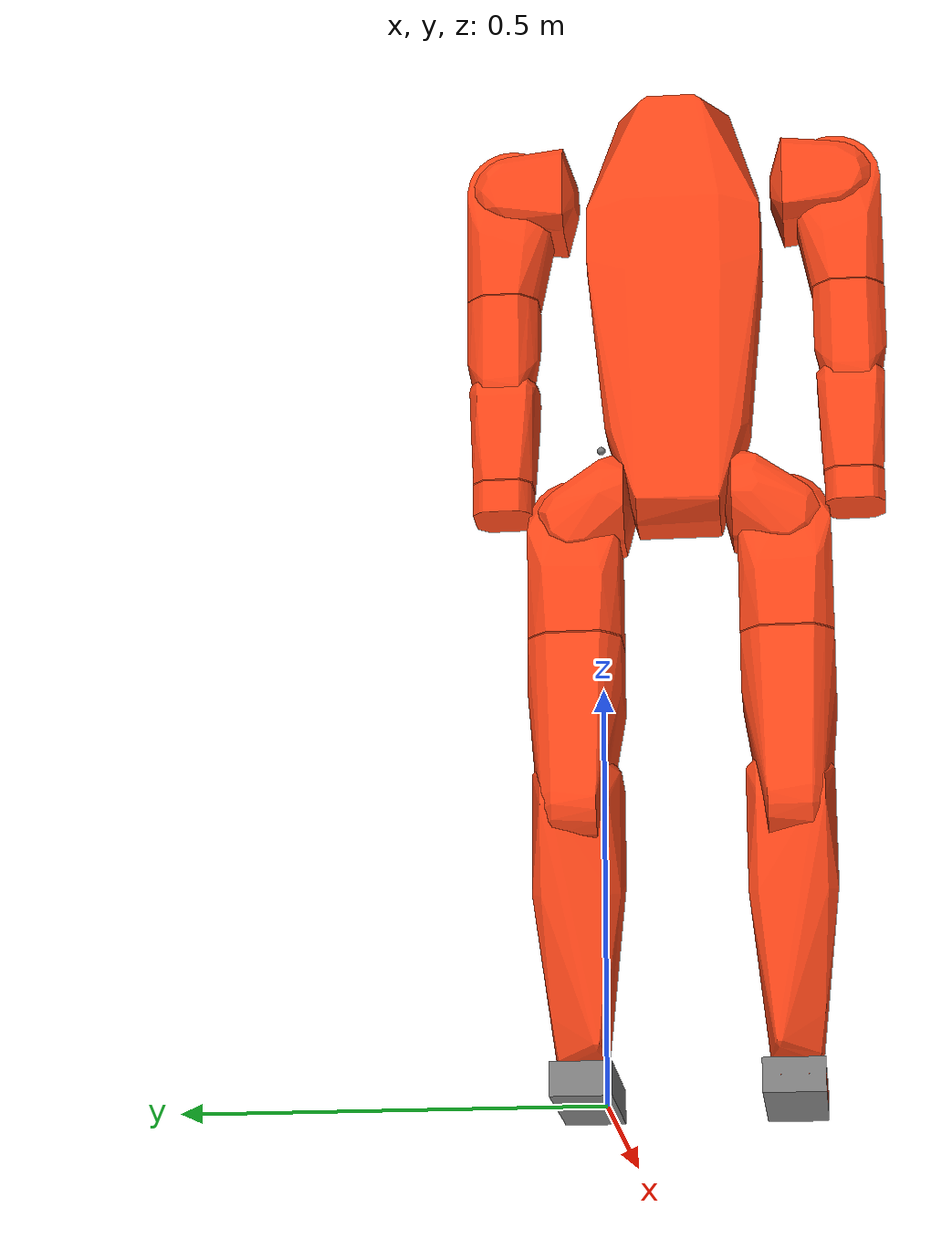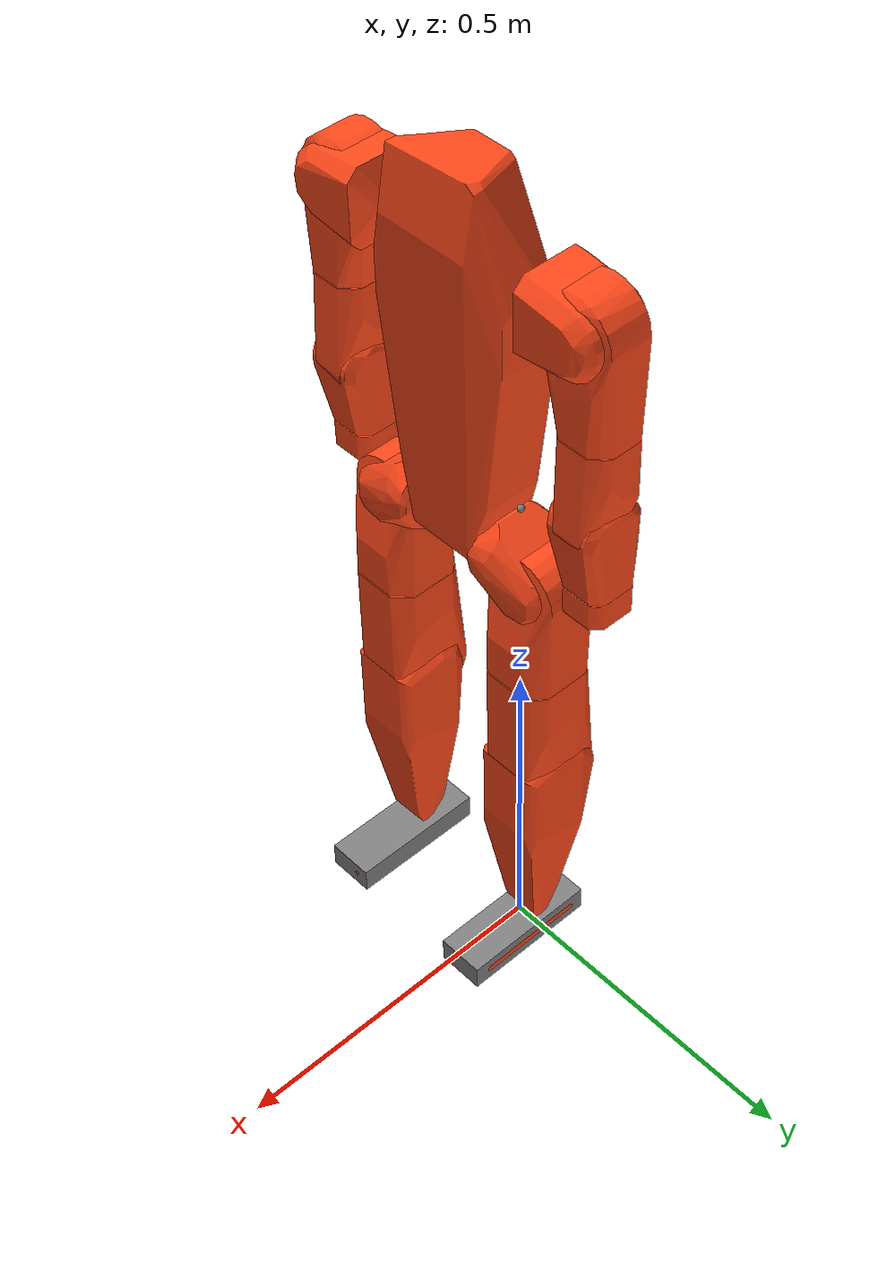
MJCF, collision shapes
<mujoco model="assy_forurdf">
  <default>
    <default class="robot">
      <default class="robstride_00">
        <joint armature="0.001" frictionloss="0.1" actuatorfrcrange="-14.0 14.0" />
        <motor ctrlrange="-14.0 14.0" />
      </default>
      <default class="robstride_04">
        <joint armature="0.04" frictionloss="0.2" actuatorfrcrange="-120.0 120.0" />
        <motor ctrlrange="-120.0 120.0" />
      </default>
      <default class="robstride_02">
        <joint armature="0.0042" frictionloss="0.1" actuatorfrcrange="-17.0 17.0" />
        <motor ctrlrange="-17.0 17.0" />
      </default>
      <default class="robstride_03">
        <joint armature="0.02" frictionloss="0.2" actuatorfrcrange="-60.0 60.0" />
        <motor ctrlrange="-60.0 60.0" />
      </default>
      <default class="visual">
        <geom material="visualgeom" contype="0" conaffinity="0" group="2" />
      </default>
      <default class="collision">
        <geom material="collision_material" condim="3" contype="0" conaffinity="1" priority="1" group="1" solref="0.02 0.8" solimp="0.9 0.95 0.001" friction="0.64 0.02 0.01" />
      </default>
    </default>
    <mesh maxhullvert="64" />
  </default>

  <compiler angle="radian" />

  <asset>
    <material name="base_material" rgba="1 0 0 1" />
    <material name="KD_B_102B_TORSO_BTM_material" rgba="0.121569 0.121569 0.121569 1" />
    <material name="default_material" rgba="0.7 0.7 0.7 1" />
    <material name="collision_material" rgba="1.0 0.28 0.1 0.9" />
    <mesh name="KD_B_102B_TORSO_BTM_collision.stl" file="meshes/KD_B_102B_TORSO_BTM_collision.stl" />
    <mesh name="KD_B_102B_TORSO_BTM.stl" file="meshes/KD_B_102B_TORSO_BTM.stl" />
    <mesh name="KD_D_102L_L_Hip_Yoke_Drive_collision.stl" file="meshes/KD_D_102L_L_Hip_Yoke_Drive_collision.stl" />
    <mesh name="KD_D_102L_L_Hip_Yoke_Drive.stl" file="meshes/KD_D_102L_L_Hip_Yoke_Drive.stl" />
    <mesh name="L_Hip_Roll_RS03_collision.stl" file="meshes/L_Hip_Roll_RS03_collision.stl" />
    <mesh name="L_Hip_Roll_RS03.stl" file="meshes/L_Hip_Roll_RS03.stl" />
    <mesh name="KD_D_301L_L_Femur_Lower_Drive_collision.stl" file="meshes/KD_D_301L_L_Femur_Lower_Drive_collision.stl" />
    <mesh name="KD_D_301L_L_Femur_Lower_Drive.stl" file="meshes/KD_D_301L_L_Femur_Lower_Drive.stl" />
    <mesh name="KD_D_401L_L_Shin_Drive_collision.stl" file="meshes/KD_D_401L_L_Shin_Drive_collision.stl" />
    <mesh name="KD_D_401L_L_Shin_Drive.stl" file="meshes/KD_D_401L_L_Shin_Drive.stl" />
    <mesh name="LFootBushing_GPF_1517_12_collision.stl" file="meshes/LFootBushing_GPF_1517_12_collision.stl" />
    <mesh name="LFootBushing_GPF_1517_12.stl" file="meshes/LFootBushing_GPF_1517_12.stl" />
    <mesh name="KC_C_101R_ShldYokeDrive_collision.stl" file="meshes/KC_C_101R_ShldYokeDrive_collision.stl" />
    <mesh name="KC_C_101R_ShldYokeDrive.stl" file="meshes/KC_C_101R_ShldYokeDrive.stl" />
    <mesh name="RS03_3_collision.stl" file="meshes/RS03_3_collision.stl" />
    <mesh name="RS03_3.stl" file="meshes/RS03_3.stl" />
    <mesh name="KC_C_202R_collision.stl" file="meshes/KC_C_202R_collision.stl" />
    <mesh name="KC_C_202R.stl" file="meshes/KC_C_202R.stl" />
    <mesh name="KC_C_401R_R_UpForearmDrive_collision.stl" file="meshes/KC_C_401R_R_UpForearmDrive_collision.stl" />
    <mesh name="KC_C_401R_R_UpForearmDrive.stl" file="meshes/KC_C_401R_R_UpForearmDrive.stl" />
    <mesh name="PRT0001_collision.stl" file="meshes/PRT0001_collision.stl" />
    <mesh name="PRT0001.stl" file="meshes/PRT0001.stl" />
    <mesh name="KD_C_101L_ShldYokeDrive_collision.stl" file="meshes/KD_C_101L_ShldYokeDrive_collision.stl" />
    <mesh name="KD_C_101L_ShldYokeDrive.stl" file="meshes/KD_C_101L_ShldYokeDrive.stl" />
    <mesh name="RS03_4_collision.stl" file="meshes/RS03_4_collision.stl" />
    <mesh name="RS03_4.stl" file="meshes/RS03_4.stl" />
    <mesh name="KD_C_301L_LowerBicepDrive_collision.stl" file="meshes/KD_C_301L_LowerBicepDrive_collision.stl" />
    <mesh name="KD_C_301L_LowerBicepDrive.stl" file="meshes/KD_C_301L_LowerBicepDrive.stl" />
    <mesh name="KC_C_401L_Up_Forearm_Drive_collision.stl" file="meshes/KC_C_401L_Up_Forearm_Drive_collision.stl" />
    <mesh name="KC_C_401L_Up_Forearm_Drive.stl" file="meshes/KC_C_401L_Up_Forearm_Drive.stl" />
    <mesh name="PRT0001_2_collision.stl" file="meshes/PRT0001_2_collision.stl" />
    <mesh name="PRT0001_2.stl" file="meshes/PRT0001_2.stl" />
    <mesh name="KD_D_102R_collision.stl" file="meshes/KD_D_102R_collision.stl" />
    <mesh name="KD_D_102R.stl" file="meshes/KD_D_102R.stl" />
    <mesh name="L_Hip_Roll_RS03_2_collision.stl" file="meshes/L_Hip_Roll_RS03_2_collision.stl" />
    <mesh name="L_Hip_Roll_RS03_2.stl" file="meshes/L_Hip_Roll_RS03_2.stl" />
    <mesh name="KD_D_301R_collision.stl" file="meshes/KD_D_301R_collision.stl" />
    <mesh name="KD_D_301R.stl" file="meshes/KD_D_301R.stl" />
    <mesh name="KD_D_401R_collision.stl" file="meshes/KD_D_401R_collision.stl" />
    <mesh name="KD_D_401R.stl" file="meshes/KD_D_401R.stl" />
    <mesh name="RFootBushing_GPF_1517_12_collision.stl" file="meshes/RFootBushing_GPF_1517_12_collision.stl" />
    <mesh name="RFootBushing_GPF_1517_12.stl" file="meshes/RFootBushing_GPF_1517_12.stl" />
    <mesh name="imu_collision.stl" file="meshes/imu_collision.stl" />
    <mesh name="imu.stl" file="meshes/imu.stl" />
  </asset>

  <worldbody>
    <body name="base" pos="0.00000000 0.00000000 0.80884103" quat="1 0 0 0" childclass="robot">
      <freejoint name="floating_base" />
      <geom name="base_visual" pos="0 -0.095 0" quat="0.7071054825112363 0.0 0.0 0.7071080798594735" material="base_material" type="sphere" size="0.01" class="visual" />
      <body name="KD_B_102B_TORSO_BTM" pos="0 -0.095 0" quat="0.7071054825112363 0.0 0.0 0.7071080798594735">
        <inertial pos="-0.000061 0.000503 0.157978" quat="1.0 0.0 0.0 0.0" mass="13.751127" diaginertia="0.5458 0.574453 0.064293" />
        <geom name="KD_B_102B_TORSO_BTM_collision" pos="0 0 0" quat="1.0 0.0 0.0 0.0" type="mesh" mesh="KD_B_102B_TORSO_BTM_collision.stl" class="collision" />
        <geom name="KD_B_102B_TORSO_BTM_visual" pos="0 0 0" quat="1.0 0.0 0.0 0.0" material="KD_B_102B_TORSO_BTM_material" type="mesh" mesh="KD_B_102B_TORSO_BTM.stl" class="visual" />
        <body name="KD_D_102L_L_Hip_Yoke_Drive" pos="0.056001 0.002025 -0.073841" quat="0.5000001633974483 -0.4999999999999733 -0.49999983660255165 0.4999999999999733">
          <joint name="dof_left_hip_pitch_04" type="hinge" ref="0.0" class="robstride_04" range="-1.047198 2.216568" axis="0 0 1" />
          <inertial pos="-0.004258 0.005667 -0.040380" quat="1.0 0.0 0.0 0.0" mass="0.550354" diaginertia="0.00093 0.001251 0.001328" />
          <geom name="KD_D_102L_L_Hip_Yoke_Drive_collision" pos="0 0 0" quat="1.0 0.0 0.0 0.0" type="mesh" mesh="KD_D_102L_L_Hip_Yoke_Drive_collision.stl" class="collision" />
          <geom name="KD_D_102L_L_Hip_Yoke_Drive_visual" pos="0 0 0" quat="1.0 0.0 0.0 0.0" material="KD_B_102B_TORSO_BTM_material" type="mesh" mesh="KD_D_102L_L_Hip_Yoke_Drive.stl" class="visual" />
          <body name="L_Hip_Roll_RS03" pos="-0.028250 0.030000 -0.071000" quat="-1.2247452309842457e-07 0.7071068967259713 1.22474483074382e-07 0.7071066656470838">
            <joint name="dof_left_hip_roll_03" type="hinge" ref="0.0" class="robstride_03" range="-0.209440 2.268928" axis="0 0 -1" />
            <inertial pos="-0.000136 -0.059376 0.026066" quat="1.0 0.0 0.0 0.0" mass="2.396969" diaginertia="0.01035 0.003224 0.010755" />
            <geom name="L_Hip_Roll_RS03_collision" pos="0 0 0" quat="1.0 0.0 0.0 0.0" type="mesh" mesh="L_Hip_Roll_RS03_collision.stl" class="collision" />
            <geom name="L_Hip_Roll_RS03_visual" pos="0 0 0" quat="1.0 0.0 0.0 0.0" material="KD_B_102B_TORSO_BTM_material" type="mesh" mesh="L_Hip_Roll_RS03.stl" class="visual" />
            <body name="KD_D_301L_L_Femur_Lower_Drive" pos="0 -0.143000 0.025250" quat="-1.2247452309842457e-07 -1.22474483074382e-07 -0.7071066656470838 -0.7071068967259713">
              <joint name="dof_left_hip_yaw_03" type="hinge" ref="0.0" class="robstride_03" range="-1.570796 1.570796" axis="0 0 1" />
              <inertial pos="0.001576 0.013392 -0.172799" quat="1.0 0.0 0.0 0.0" mass="2.349254" diaginertia="0.015361 0.013924 0.004011" />
              <geom name="KD_D_301L_L_Femur_Lower_Drive_collision" pos="0 0 0" quat="1.0 0.0 0.0 0.0" type="mesh" mesh="KD_D_301L_L_Femur_Lower_Drive_collision.stl" class="collision" />
              <geom name="KD_D_301L_L_Femur_Lower_Drive_visual" pos="0 0 0" quat="1.0 0.0 0.0 0.0" material="KD_B_102B_TORSO_BTM_material" type="mesh" mesh="KD_D_301L_L_Femur_Lower_Drive.stl" class="visual" />
              <body name="KD_D_401L_L_Shin_Drive" pos="-0.021000 0.021000 -0.212000" quat="0.5000001633974483 0.4999999999999733 0.49999983660255165 0.4999999999999733">
                <joint name="dof_left_knee_04" type="hinge" ref="0.0" class="robstride_04" range="0 2.705260" axis="0 0 1" />
                <inertial pos="-0.024116 -0.104308 0.018559" quat="1.0 0.0 0.0 0.0" mass="1.684707" diaginertia="0.014785 0.002991 0.014664" />
                <geom name="KD_D_401L_L_Shin_Drive_collision" pos="0 0 0" quat="1.0 0.0 0.0 0.0" type="mesh" mesh="KD_D_401L_L_Shin_Drive_collision.stl" class="collision" />
                <geom name="KD_D_401L_L_Shin_Drive_visual" pos="0 0 0" quat="1.0 0.0 0.0 0.0" material="KD_B_102B_TORSO_BTM_material" type="mesh" mesh="KD_D_401L_L_Shin_Drive.stl" class="visual" />
                <body name="LFootBushing_GPF_1517_12" pos="-0.030000 -0.290000 0.000950" quat="-1.7320510330969933e-07 0.999999999999985 0.0 -0.0">
                  <joint name="dof_left_ankle_02" type="hinge" ref="0.0" class="robstride_02" range="-1.134464 0.261799" axis="0 0 -1" />
                  <inertial pos="-0.016549 0.031142 -0.012943" quat="1.0 0.0 0.0 0.0" mass="0.608966" diaginertia="0.000377 0.00194 0.001893" />
                  <geom name="LFootBushing_GPF_1517_12_visual" pos="0 0 0" quat="1.0 0.0 0.0 0.0" material="KD_B_102B_TORSO_BTM_material" type="mesh" mesh="LFootBushing_GPF_1517_12.stl" class="visual" />
                  <geom name="LFootBushing_GPF_1517_12_collision_capsule_0" type="capsule" quat="1.000000 0.000000 0.000000 0.000000" fromto="-0.107970 0.038000 -0.030814 0.056360 0.038000 -0.030814" size="0.020000 0.104686" material="collision_material" class="collision" />
                  <geom name="LFootBushing_GPF_1517_12_visual_capsule_0" type="capsule" quat="1.000000 0.000000 0.000000 0.000000" fromto="-0.107970 0.038000 -0.030814 0.056360 0.038000 -0.030814" size="0.020000 0.104686" material="KD_B_102B_TORSO_BTM_material" class="visual" />
                  <geom name="LFootBushing_GPF_1517_12_collision_capsule_1" type="capsule" quat="1.000000 0.000000 0.000000 0.000000" fromto="-0.113013 0.038000 0.000954 0.056360 0.038000 0.000954" size="0.020000 0.104686" material="collision_material" class="collision" />
                  <geom name="LFootBushing_GPF_1517_12_visual_capsule_1" type="capsule" quat="1.000000 0.000000 0.000000 0.000000" fromto="-0.113013 0.038000 0.000954 0.056360 0.038000 0.000954" size="0.020000 0.104686" material="KD_B_102B_TORSO_BTM_material" class="visual" />
                  <site name="left_foot" size="0.105 0.02 0.036" pos="-0.0283 0.038 -0.014" type="box" />
                </body>
              </body>
            </body>
          </body>
        </body>
        <body name="KC_C_101R_ShldYokeDrive" pos="-0.120999 0.002025 0.336659" quat="0.7071068967259818 0.0 -0.7071066656470943 0.0">
          <joint name="dof_right_shoulder_pitch_03" type="hinge" ref="0.0" class="robstride_03" range="-3.490658 1.047198" axis="0 0 -1" />
          <inertial pos="0.003158 -0.007737 0.047375" quat="1.0 0.0 0.0 0.0" mass="0.569870" diaginertia="0.001409 0.001159 0.001309" />
          <geom name="KC_C_101R_ShldYokeDrive_collision" pos="0 0 0" quat="1.0 0.0 0.0 0.0" type="mesh" mesh="KC_C_101R_ShldYokeDrive_collision.stl" class="collision" />
          <geom name="KC_C_101R_ShldYokeDrive_visual" pos="0 0 0" quat="1.0 0.0 0.0 0.0" material="KD_B_102B_TORSO_BTM_material" type="mesh" mesh="KC_C_101R_ShldYokeDrive.stl" class="visual" />
          <body name="RS03_3" pos="0 -0.024250 0.080000" quat="0.5000001633974483 0.4999999999999733 0.4999999999999733 -0.49999983660255165">
            <joint name="dof_right_shoulder_roll_03" type="hinge" ref="0.0" class="robstride_03" range="-1.658063 0.436332" axis="0 0 1" />
            <inertial pos="-0.004909 -0.041175 -0.029409" quat="1.0 0.0 0.0 0.0" mass="1.789232" diaginertia="0.007176 0.001972 0.007602" />
            <geom name="RS03_3_collision" pos="0 0 0" quat="1.0 0.0 0.0 0.0" type="mesh" mesh="RS03_3_collision.stl" class="collision" />
            <geom name="RS03_3_visual" pos="0 0 0" quat="1.0 0.0 0.0 0.0" material="KD_B_102B_TORSO_BTM_material" type="mesh" mesh="RS03_3.stl" class="visual" />
            <body name="KC_C_202R" pos="-0.013000 -0.142500 -0.031670" quat="0.7071068967259818 -0.7071066656470943 0.0 0.0">
              <joint name="dof_right_shoulder_yaw_02" type="hinge" ref="0.0" class="robstride_02" range="-1.671886 1.671886" axis="0 0 1" />
              <inertial pos="0.003135 -0.003955 -0.099599" quat="1.0 0.0 0.0 0.0" mass="0.753224" diaginertia="0.002457 0.002305 0.000727" />
              <geom name="KC_C_202R_collision" pos="0 0 0" quat="1.0 0.0 0.0 0.0" type="mesh" mesh="KC_C_202R_collision.stl" class="collision" />
              <geom name="KC_C_202R_visual" pos="0 0 0" quat="1.0 0.0 0.0 0.0" material="KD_B_102B_TORSO_BTM_material" type="mesh" mesh="KC_C_202R.stl" class="visual" />
              <body name="KC_C_401R_R_UpForearmDrive" pos="0.019000 -0.010000 -0.137000" quat="0.5000001633974483 -0.4999999999999733 -0.49999983660255165 0.4999999999999733">
                <joint name="dof_right_elbow_02" type="hinge" ref="0.0" class="robstride_02" range="0 2.478368" axis="0 0 1" />
                <inertial pos="0.015853 0.061198 0.015613" quat="1.0 0.0 0.0 0.0" mass="0.641859" diaginertia="0.001302 0.000701 0.001278" />
                <geom name="KC_C_401R_R_UpForearmDrive_collision" pos="0 0 0" quat="1.0 0.0 0.0 0.0" type="mesh" mesh="KC_C_401R_R_UpForearmDrive_collision.stl" class="collision" />
                <geom name="KC_C_401R_R_UpForearmDrive_visual" pos="0 0 0" quat="1.0 0.0 0.0 0.0" material="KD_B_102B_TORSO_BTM_material" type="mesh" mesh="KC_C_401R_R_UpForearmDrive.stl" class="visual" />
                <body name="PRT0001" pos="0.017350 0.103000 0.018000" quat="0.5000001633974483 -0.4999999999999733 0.4999999999999733 0.49999983660255165">
                  <joint name="dof_right_wrist_00" type="hinge" ref="0.0" class="robstride_00" range="-1.378810 1.378810" axis="0 0 -1" />
                  <inertial pos="0.000339 0.000063 0.027268" quat="1.0 0.0 0.0 0.0" mass="0.469028" diaginertia="0.000279 0.00027 0.000412" />
                  <geom name="PRT0001_collision" pos="0 0 0" quat="1.0 0.0 0.0 0.0" type="mesh" mesh="PRT0001_collision.stl" class="collision" />
                  <geom name="PRT0001_visual" pos="0 0 0" quat="1.0 0.0 0.0 0.0" material="KD_B_102B_TORSO_BTM_material" type="mesh" mesh="PRT0001.stl" class="visual" />
                </body>
              </body>
            </body>
          </body>
        </body>
        <body name="KD_C_101L_ShldYokeDrive" pos="0.121001 0.002025 0.336659" quat="0.7071068967259818 0.0 0.7071066656470943 0.0">
          <joint name="dof_left_shoulder_pitch_03" type="hinge" ref="0.0" class="robstride_03" range="-1.047198 3.490658" axis="0 0 -1" />
          <inertial pos="-0.003158 -0.007737 0.047374" quat="1.0 0.0 0.0 0.0" mass="0.569863" diaginertia="0.001409 0.001159 0.001309" />
          <geom name="KD_C_101L_ShldYokeDrive_collision" pos="0 0 0" quat="1.0 0.0 0.0 0.0" type="mesh" mesh="KD_C_101L_ShldYokeDrive_collision.stl" class="collision" />
          <geom name="KD_C_101L_ShldYokeDrive_visual" pos="0 0 0" quat="1.0 0.0 0.0 0.0" material="KD_B_102B_TORSO_BTM_material" type="mesh" mesh="KD_C_101L_ShldYokeDrive.stl" class="visual" />
          <body name="RS03_4" pos="0 -0.024250 0.080000" quat="0.5000001633974483 0.4999999999999733 -0.4999999999999733 0.49999983660255165">
            <joint name="dof_left_shoulder_roll_03" type="hinge" ref="0.0" class="robstride_03" range="-0.436332 1.658063" axis="0 0 1" />
            <inertial pos="0.004876 -0.041173 -0.029352" quat="1.0 0.0 0.0 0.0" mass="1.789190" diaginertia="0.007175 0.001972 0.007602" />
            <geom name="RS03_4_collision" pos="0 0 0" quat="1.0 0.0 0.0 0.0" type="mesh" mesh="RS03_4_collision.stl" class="collision" />
            <geom name="RS03_4_visual" pos="0 0 0" quat="1.0 0.0 0.0 0.0" material="KD_B_102B_TORSO_BTM_material" type="mesh" mesh="RS03_4.stl" class="visual" />
            <body name="KD_C_301L_LowerBicepDrive" pos="0.013000 -0.142500 -0.030750" quat="0.7071068967259818 -0.7071066656470943 0.0 0.0">
              <joint name="dof_left_shoulder_yaw_02" type="hinge" ref="0.0" class="robstride_02" range="-1.671886 1.671886" axis="0 0 1" />
              <inertial pos="0.000333 -0.002948 -0.095705" quat="1.0 0.0 0.0 0.0" mass="0.866827" diaginertia="0.002953 0.002777 0.000923" />
              <geom name="KD_C_301L_LowerBicepDrive_collision" pos="0 0 0" quat="1.0 0.0 0.0 0.0" type="mesh" mesh="KD_C_301L_LowerBicepDrive_collision.stl" class="collision" />
              <geom name="KD_C_301L_LowerBicepDrive_visual" pos="0 0 0" quat="1.0 0.0 0.0 0.0" material="KD_B_102B_TORSO_BTM_material" type="mesh" mesh="KD_C_301L_LowerBicepDrive.stl" class="visual" />
              <body name="KC_C_401L_Up_Forearm_Drive" pos="-0.019000 -0.010000 -0.137000" quat="0.5000001633974483 0.4999999999999733 0.49999983660255165 0.4999999999999733">
                <joint name="dof_left_elbow_02" type="hinge" ref="0.0" class="robstride_02" range="-2.478368 0" axis="0 0 1" />
                <inertial pos="0.015853 -0.061197 0.015921" quat="1.0 0.0 0.0 0.0" mass="0.641873" diaginertia="0.001303 0.000701 0.001278" />
                <geom name="KC_C_401L_Up_Forearm_Drive_collision" pos="0 0 0" quat="1.0 0.0 0.0 0.0" type="mesh" mesh="KC_C_401L_Up_Forearm_Drive_collision.stl" class="collision" />
                <geom name="KC_C_401L_Up_Forearm_Drive_visual" pos="0 0 0" quat="1.0 0.0 0.0 0.0" material="KD_B_102B_TORSO_BTM_material" type="mesh" mesh="KC_C_401L_Up_Forearm_Drive.stl" class="visual" />
                <body name="PRT0001_2" pos="0.017350 -0.103000 0.018000" quat="0.5000001633974483 0.4999999999999733 -0.4999999999999733 0.49999983660255165">
                  <joint name="dof_left_wrist_00" type="hinge" ref="0.0" class="robstride_00" range="-1.378810 1.378810" axis="0 0 -1" />
                  <inertial pos="-0.000339 -0.000063 0.027268" quat="1.0 0.0 0.0 0.0" mass="0.469028" diaginertia="0.000279 0.00027 0.000412" />
                  <geom name="PRT0001_2_collision" pos="0 0 0" quat="1.0 0.0 0.0 0.0" type="mesh" mesh="PRT0001_2_collision.stl" class="collision" />
                  <geom name="PRT0001_2_visual" pos="0 0 0" quat="1.0 0.0 0.0 0.0" material="KD_B_102B_TORSO_BTM_material" type="mesh" mesh="PRT0001_2.stl" class="visual" />
                </body>
              </body>
            </body>
          </body>
        </body>
        <body name="KD_D_102R" pos="-0.055999 0.002025 -0.073841" quat="0.5000001633974483 0.4999999999999733 0.49999983660255165 0.4999999999999733">
          <joint name="dof_right_hip_pitch_04" type="hinge" ref="0.0" class="robstride_04" range="-2.216568 1.047198" axis="0 0 1" />
          <inertial pos="-0.004258 -0.005667 -0.040379" quat="1.0 0.0 0.0 0.0" mass="0.550361" diaginertia="0.00093 0.001251 0.001328" />
          <geom name="KD_D_102R_collision" pos="0 0 0" quat="1.0 0.0 0.0 0.0" type="mesh" mesh="KD_D_102R_collision.stl" class="collision" />
          <geom name="KD_D_102R_visual" pos="0 0 0" quat="1.0 0.0 0.0 0.0" material="KD_B_102B_TORSO_BTM_material" type="mesh" mesh="KD_D_102R.stl" class="visual" />
          <body name="L_Hip_Roll_RS03_2" pos="-0.028250 -0.030000 -0.071000" quat="0.7071068967259818 0.0 -0.7071066656470943 0.0">
            <joint name="dof_right_hip_roll_03" type="hinge" ref="0.0" class="robstride_03" range="-2.268928 0.209440" axis="0 0 1" />
            <inertial pos="-0.000137 -0.059376 -0.026067" quat="1.0 0.0 0.0 0.0" mass="2.396917" diaginertia="0.01035 0.003224 0.010755" />
            <geom name="L_Hip_Roll_RS03_2_collision" pos="0 0 0" quat="1.0 0.0 0.0 0.0" type="mesh" mesh="L_Hip_Roll_RS03_2_collision.stl" class="collision" />
            <geom name="L_Hip_Roll_RS03_2_visual" pos="0 0 0" quat="1.0 0.0 0.0 0.0" material="KD_B_102B_TORSO_BTM_material" type="mesh" mesh="L_Hip_Roll_RS03_2.stl" class="visual" />
            <body name="KD_D_301R" pos="0 -0.143000 -0.025250" quat="0.7071068967259818 -0.7071066656470943 0.0 0.0">
              <joint name="dof_right_hip_yaw_03" type="hinge" ref="0.0" class="robstride_03" range="-1.570796 1.570796" axis="0 0 1" />
              <inertial pos="-0.001577 0.013392 -0.172799" quat="1.0 0.0 0.0 0.0" mass="2.349261" diaginertia="0.015362 0.013924 0.004011" />
              <geom name="KD_D_301R_collision" pos="0 0 0" quat="1.0 0.0 0.0 0.0" type="mesh" mesh="KD_D_301R_collision.stl" class="collision" />
              <geom name="KD_D_301R_visual" pos="0 0 0" quat="1.0 0.0 0.0 0.0" material="KD_B_102B_TORSO_BTM_material" type="mesh" mesh="KD_D_301R.stl" class="visual" />
              <body name="KD_D_401R" pos="0.021000 0.021000 -0.212000" quat="0.5000001633974483 0.4999999999999733 0.49999983660255165 0.4999999999999733">
                <joint name="dof_right_knee_04" type="hinge" ref="0.0" class="robstride_04" range="-2.705260 0" axis="0 0 -1" />
                <inertial pos="-0.024117 -0.104310 -0.018558" quat="1.0 0.0 0.0 0.0" mass="1.684717" diaginertia="0.014785 0.002991 0.014664" />
                <geom name="KD_D_401R_collision" pos="0 0 0" quat="1.0 0.0 0.0 0.0" type="mesh" mesh="KD_D_401R_collision.stl" class="collision" />
                <geom name="KD_D_401R_visual" pos="0 0 0" quat="1.0 0.0 0.0 0.0" material="KD_B_102B_TORSO_BTM_material" type="mesh" mesh="KD_D_401R.stl" class="visual" />
                <body name="RFootBushing_GPF_1517_12" pos="-0.030000 -0.290000 -0.000950" quat="1.0 0.0 0.0 0.0">
                  <joint name="dof_right_ankle_02" type="hinge" ref="0.0" class="robstride_02" range="-0.261799 1.134464" axis="0 0 -1" />
                  <inertial pos="-0.016546 -0.031136 -0.012942" quat="1.0 0.0 0.0 0.0" mass="0.608742" diaginertia="0.000377 0.001939 0.001892" />
                  <geom name="RFootBushing_GPF_1517_12_visual" pos="0 0 0" quat="1.0 0.0 0.0 0.0" material="KD_B_102B_TORSO_BTM_material" type="mesh" mesh="RFootBushing_GPF_1517_12.stl" class="visual" />
                  <geom name="RFootBushing_GPF_1517_12_collision_capsule_0" type="capsule" quat="1.000000 0.000000 0.000000 0.000000" fromto="-0.102246 -0.038000 -0.030886 0.056821 -0.038000 -0.030886" size="0.020000 0.105464" material="collision_material" class="collision" />
                  <geom name="RFootBushing_GPF_1517_12_visual_capsule_0" type="capsule" quat="1.000000 0.000000 0.000000 0.000000" fromto="-0.102246 -0.038000 -0.030886 0.056821 -0.038000 -0.030886" size="0.020000 0.105464" material="KD_B_102B_TORSO_BTM_material" class="visual" />
                  <geom name="RFootBushing_GPF_1517_12_collision_capsule_1" type="capsule" quat="1.000000 0.000000 0.000000 0.000000" fromto="-0.114107 -0.038000 0.000954 0.056821 -0.038000 0.000954" size="0.020000 0.105464" material="collision_material" class="collision" />
                  <geom name="RFootBushing_GPF_1517_12_visual_capsule_1" type="capsule" quat="1.000000 0.000000 0.000000 0.000000" fromto="-0.114107 -0.038000 0.000954 0.056821 -0.038000 0.000954" size="0.020000 0.105464" material="KD_B_102B_TORSO_BTM_material" class="visual" />
                  <site name="right_foot" size="0.105 0.02 0.036" pos="-0.0283 -0.038 -0.014" type="box" />
                </body>
              </body>
            </body>
          </body>
        </body>
        <body name="imu" pos="-0.013761 -0.022944 0.394547" quat="0.9999845682495649 0.005555471422940753 0.0 0.0">
          <inertial pos="0.014706 0.012343 0.002999" quat="1.0 0.0 0.0 0.0" mass="0.005700" diaginertia="1e-06 1e-06 2e-06" />
          <geom name="imu_collision" pos="0 0 0" quat="1.0 0.0 0.0 0.0" type="mesh" mesh="imu_collision.stl" class="collision" />
          <geom name="imu_visual" pos="0 0 0" quat="1.0 0.0 0.0 0.0" material="KD_B_102B_TORSO_BTM_material" type="mesh" mesh="imu.stl" class="visual" />
          <site name="imu_site" quat="1.0 0.0 0.0 0.0" pos="0.0 0.0 0.0" />
        </body>
      </body>
      <site name="base_site" pos="0 0 0" quat="1 0 0 0" />
      <camera name="front_camera" mode="track" fovy="90.0" quat="4.329780281177467e-17 4.329780281177466e-17 0.7071067811865475 0.7071067811865476" pos="0.0 2.0 0.5" />
      <camera name="side_camera" mode="track" fovy="90.0" quat="-0.5 -0.4999999999999999 0.5 0.5000000000000001" pos="-2.0 0.0 0.5" />
    </body>
  </worldbody>

  <actuator>
    <motor name="dof_left_hip_pitch_04_ctrl" joint="dof_left_hip_pitch_04" class="robstride_04" />
    <motor name="dof_left_hip_roll_03_ctrl" joint="dof_left_hip_roll_03" class="robstride_03" />
    <motor name="dof_left_hip_yaw_03_ctrl" joint="dof_left_hip_yaw_03" class="robstride_03" />
    <motor name="dof_left_knee_04_ctrl" joint="dof_left_knee_04" class="robstride_04" />
    <motor name="dof_left_ankle_02_ctrl" joint="dof_left_ankle_02" class="robstride_02" />
    <motor name="dof_right_shoulder_pitch_03_ctrl" joint="dof_right_shoulder_pitch_03" class="robstride_03" />
    <motor name="dof_right_shoulder_roll_03_ctrl" joint="dof_right_shoulder_roll_03" class="robstride_03" />
    <motor name="dof_right_shoulder_yaw_02_ctrl" joint="dof_right_shoulder_yaw_02" class="robstride_02" />
    <motor name="dof_right_elbow_02_ctrl" joint="dof_right_elbow_02" class="robstride_02" />
    <motor name="dof_right_wrist_00_ctrl" joint="dof_right_wrist_00" class="robstride_00" />
    <motor name="dof_left_shoulder_pitch_03_ctrl" joint="dof_left_shoulder_pitch_03" class="robstride_03" />
    <motor name="dof_left_shoulder_roll_03_ctrl" joint="dof_left_shoulder_roll_03" class="robstride_03" />
    <motor name="dof_left_shoulder_yaw_02_ctrl" joint="dof_left_shoulder_yaw_02" class="robstride_02" />
    <motor name="dof_left_elbow_02_ctrl" joint="dof_left_elbow_02" class="robstride_02" />
    <motor name="dof_left_wrist_00_ctrl" joint="dof_left_wrist_00" class="robstride_00" />
    <motor name="dof_right_hip_pitch_04_ctrl" joint="dof_right_hip_pitch_04" class="robstride_04" />
    <motor name="dof_right_hip_roll_03_ctrl" joint="dof_right_hip_roll_03" class="robstride_03" />
    <motor name="dof_right_hip_yaw_03_ctrl" joint="dof_right_hip_yaw_03" class="robstride_03" />
    <motor name="dof_right_knee_04_ctrl" joint="dof_right_knee_04" class="robstride_04" />
    <motor name="dof_right_ankle_02_ctrl" joint="dof_right_ankle_02" class="robstride_02" />
  </actuator>

  <contact>
    <exclude body1="KD_B_102B_TORSO_BTM" body2="KD_D_102L_L_Hip_Yoke_Drive" />
    <exclude body1="KD_B_102B_TORSO_BTM" body2="KC_C_101R_ShldYokeDrive" />
    <exclude body1="KD_B_102B_TORSO_BTM" body2="KD_C_101L_ShldYokeDrive" />
    <exclude body1="KD_D_102L_L_Hip_Yoke_Drive" body2="L_Hip_Roll_RS03" />
    <exclude body1="KD_B_102B_TORSO_BTM" body2="KD_D_102R" />
    <exclude body1="KC_C_101R_ShldYokeDrive" body2="RS03_3" />
    <exclude body1="KD_B_102B_TORSO_BTM" body2="imu" />
    <exclude body1="KD_C_101L_ShldYokeDrive" body2="RS03_4" />
    <exclude body1="KD_D_102R" body2="L_Hip_Roll_RS03_2" />
    <exclude body1="L_Hip_Roll_RS03" body2="KD_D_301L_L_Femur_Lower_Drive" />
    <exclude body1="RS03_3" body2="KC_C_202R" />
    <exclude body1="RS03_4" body2="KD_C_301L_LowerBicepDrive" />
    <exclude body1="L_Hip_Roll_RS03_2" body2="KD_D_301R" />
    <exclude body1="KD_D_301L_L_Femur_Lower_Drive" body2="KD_D_401L_L_Shin_Drive" />
    <exclude body1="KC_C_202R" body2="KC_C_401R_R_UpForearmDrive" />
    <exclude body1="KD_C_301L_LowerBicepDrive" body2="KC_C_401L_Up_Forearm_Drive" />
    <exclude body1="KD_D_401L_L_Shin_Drive" body2="LFootBushing_GPF_1517_12" />
    <exclude body1="KD_D_301R" body2="KD_D_401R" />
    <exclude body1="KD_D_401R" body2="RFootBushing_GPF_1517_12" />
    <exclude body1="KC_C_401R_R_UpForearmDrive" body2="PRT0001" />
    <exclude body1="KC_C_401L_Up_Forearm_Drive" body2="PRT0001_2" />
  </contact>

  <sensor>
    <framepos name="base_site_pos" objtype="site" objname="base_site" />
    <framequat name="base_site_quat" objtype="site" objname="base_site" />
    <framelinvel name="base_site_linvel" objtype="site" objname="base_site" />
    <frameangvel name="base_site_angvel" objtype="site" objname="base_site" />
    <velocimeter name="base_site_vel" site="base_site" />
    <accelerometer name="imu_acc" site="imu_site" noise="0.01" />
    <gyro name="imu_gyro" site="imu_site" noise="0.01" />
    <magnetometer name="imu_mag" site="imu_site" noise="0.05" />
    <framepos name="imu_site_pos" objtype="site" objname="imu_site" />
    <framequat name="imu_site_quat" objtype="site" objname="imu_site" />
    <framelinvel name="imu_site_linvel" objtype="site" objname="imu_site" />
    <frameangvel name="imu_site_angvel" objtype="site" objname="imu_site" />
    <velocimeter name="imu_site_vel" site="imu_site" />
    <force name="left_foot_force" site="left_foot" />
    <force name="right_foot_force" site="right_foot" />
    <touch name="left_foot_touch" site="left_foot" />
    <touch name="right_foot_touch" site="right_foot" />
  </sensor>
</mujoco>
